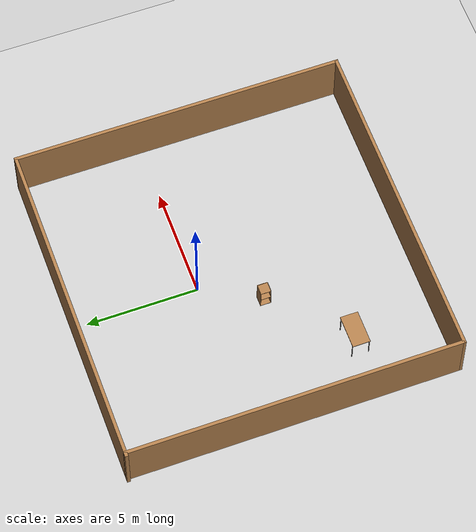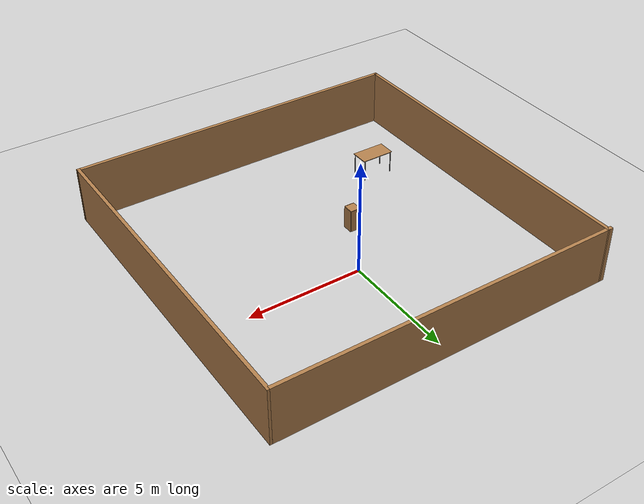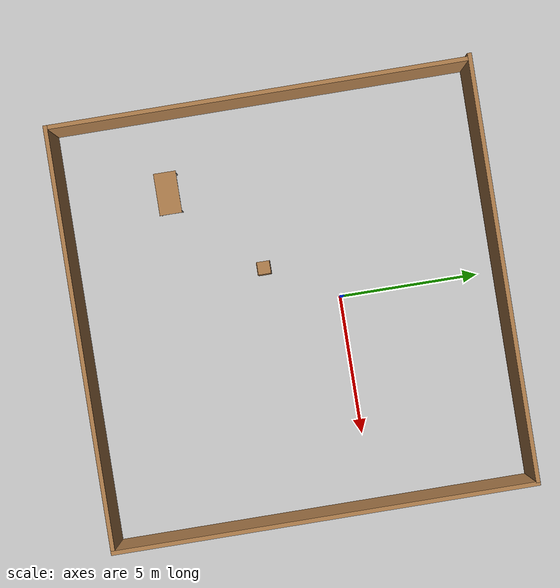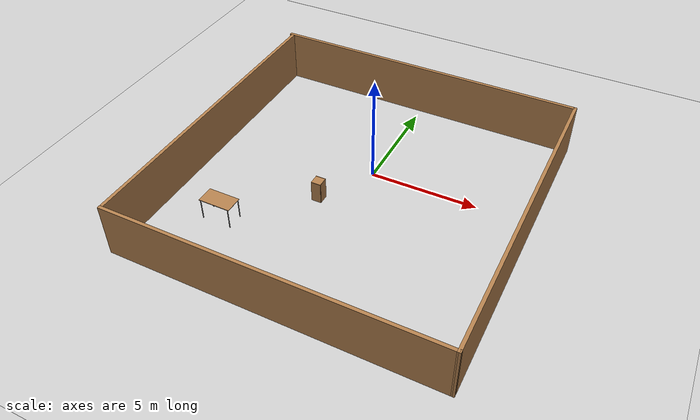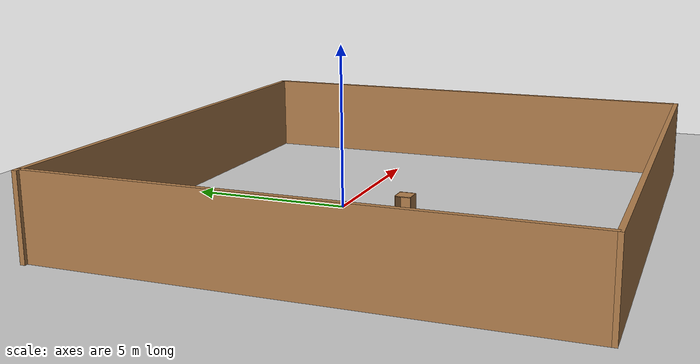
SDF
<sdf version="1.7">
 <world name="my_custom_world">
  <plugin name="gazebo_ros_factory" filename="libgazebo_ros_factory.so"/>
  <plugin name="gazebo_ros_init" filename="libgazebo_ros_init.so"/>
  <model name="ground_plane">
   <static>1</static>
   <link name="link">
    <collision name="collision">
     <geometry><plane><normal>0 0 1</normal><size>100 100</size></plane></geometry>
     <surface><friction><ode><mu>100</mu><mu2>50</mu2></ode></friction></surface>
    </collision>
    <visual name="visual">
     <cast_shadows>0</cast_shadows>
     <geometry><plane><normal>0 0 1</normal><size>100 100</size></plane></geometry>
     <material>
      <script><uri>file://media/materials/scripts/gazebo.material</uri><name>Gazebo/Grey</name></script>
     </material>
    </visual>
   </link>
  </model>
  <light name="sun" type="directional">
   <pose>0 0 10 0 -0 0</pose>
   <diffuse>0.8 0.8 0.8 1</diffuse>
   <specular>0.2 0.2 0.2 1</specular>
   <attenuation>
    <range>1000</range>
    <constant>0.9</constant>
    <linear>0.01</linear>
    <quadratic>0.001</quadratic>
   </attenuation>
   <direction>-0.5 0.1 -0.9</direction>
   <spot><inner_angle>0</inner_angle><outer_angle>0</outer_angle><falloff>0</falloff></spot>
  </light>
  <model name="Room">
   <link name="Wall_2">
    <collision name="Wall_2_Collision">
     <geometry><box><size>14.998 0.15 2.5</size></box></geometry>
     <pose>0 0 1.25 0 -0 0</pose>
    </collision>
    <visual name="Wall_2_Visual">
     <pose>0 0 1.25 0 -0 0</pose>
     <geometry><box><size>14.998 0.15 2.5</size></box></geometry>
     <material>
      <script><uri>file://media/materials/scripts/gazebo.material</uri><name>Gazebo/Wood</name></script>
      <ambient>1 1 1 1</ambient>
     </material>
     <meta><layer>0</layer></meta>
    </visual>
    <pose>-0.075504 5.65293 0 0 -0 -8e-05</pose>
   </link>
   <link name="Wall_3">
    <collision name="Wall_3_Collision">
     <geometry><box><size>15.006 0.15 2.5</size></box></geometry>
     <pose>0 0 1.25 0 -0 0</pose>
    </collision>
    <visual name="Wall_3_Visual">
     <pose>0 0 1.25 0 -0 0</pose>
     <geometry><box><size>15.006 0.15 2.5</size></box></geometry>
     <material>
      <script><uri>file://media/materials/scripts/gazebo.material</uri><name>Gazebo/Wood</name></script>
      <ambient>1 1 1 1</ambient>
     </material>
     <meta><layer>0</layer></meta>
    </visual>
    <pose>7.47634 -1.77565 0 0 -0 -1.56771</pose>
   </link>
   <link name="Wall_4">
    <collision name="Wall_4_Collision">
     <geometry><box><size>14.9978 0.15 2.5</size></box></geometry>
     <pose>0 0 1.25 0 -0 0</pose>
    </collision>
    <visual name="Wall_4_Visual">
     <pose>0 0 1.25 0 -0 0</pose>
     <geometry><box><size>14.9978 0.15 2.5</size></box></geometry>
     <material>
      <script><uri>file://media/materials/scripts/gazebo.material</uri><name>Gazebo/Wood</name></script>
      <ambient>1 1 1 1</ambient>
     </material>
     <meta><layer>0</layer></meta>
    </visual>
    <pose>0.075366 -9.19787 0 0 -0 3.14081</pose>
   </link>
   <link name="Wall_5">
    <collision name="Wall_5_Collision">
     <geometry><box><size>14.9257 0.15 2.5</size></box></geometry>
     <pose>0 0 1.25 0 -0 0</pose>
    </collision>
    <visual name="Wall_5_Visual">
     <pose>0 0 1.25 0 -0 0</pose>
     <geometry><box><size>14.9257 0.15 2.5</size></box></geometry>
     <material>
      <script><uri>file://media/materials/scripts/gazebo.material</uri><name>Gazebo/Wood</name></script>
      <ambient>1 1 1 1</ambient>
     </material>
     <meta><layer>0</layer></meta>
    </visual>
    <pose>-7.37154 -1.73431 0 0 -0 1.57391</pose>
   </link>
   <static>1</static>
  </model>
  <gravity>0 0 -9.8</gravity>
  <magnetic_field>6e-06 2.3e-05 -4.2e-05</magnetic_field>
  <atmosphere type="adiabatic"/>
  <physics type="ode">
   <max_step_size>0.001</max_step_size>
   <real_time_factor>1</real_time_factor>
   <real_time_update_rate>1000</real_time_update_rate>
  </physics>
  <scene><ambient>0.4 0.4 0.4 1</ambient><background>0.7 0.7 0.7 1</background><shadows>1</shadows></scene>
  <audio><device>default</device></audio>
  <spherical_coordinates>
   <surface_model>EARTH_WGS84</surface_model>
   <latitude_deg>0</latitude_deg>
   <longitude_deg>0</longitude_deg>
   <elevation>0</elevation>
   <heading_deg>0</heading_deg>
  </spherical_coordinates>
  <model name="table">
   <static>1</static>
   <link name="link">
    <collision name="surface">
     <pose>0 0 1 0 -0 0</pose>
     <geometry><box><size>1.5 0.8 0.03</size></box></geometry>
     <surface><friction><ode><mu>0.6</mu><mu2>0.6</mu2></ode></friction></surface>
    </collision>
    <visual name="visual1">
     <pose>0 0 1 0 -0 0</pose>
     <geometry><box><size>1.5 0.8 0.03</size></box></geometry>
     <material>
      <script><uri>file://media/materials/scripts/gazebo.material</uri><name>Gazebo/Wood</name></script>
     </material>
    </visual>
    <collision name="front_left_leg">
     <pose>0.68 0.38 0.5 0 -0 0</pose>
     <geometry><cylinder><radius>0.02</radius><length>1</length></cylinder></geometry>
    </collision>
    <visual name="front_left_leg">
     <pose>0.68 0.38 0.5 0 -0 0</pose>
     <geometry><cylinder><radius>0.02</radius><length>1</length></cylinder></geometry>
     <material>
      <script><uri>file://media/materials/scripts/gazebo.material</uri><name>Gazebo/Grey</name></script>
     </material>
    </visual>
    <collision name="front_right_leg">
     <pose>0.68 -0.38 0.5 0 -0 0</pose>
     <geometry><cylinder><radius>0.02</radius><length>1</length></cylinder></geometry>
    </collision>
    <visual name="front_right_leg">
     <pose>0.68 -0.38 0.5 0 -0 0</pose>
     <geometry><cylinder><radius>0.02</radius><length>1</length></cylinder></geometry>
     <material>
      <script><uri>file://media/materials/scripts/gazebo.material</uri><name>Gazebo/Grey</name></script>
     </material>
    </visual>
    <collision name="back_right_leg">
     <pose>-0.68 -0.38 0.5 0 -0 0</pose>
     <geometry><cylinder><radius>0.02</radius><length>1</length></cylinder></geometry>
    </collision>
    <visual name="back_right_leg">
     <pose>-0.68 -0.38 0.5 0 -0 0</pose>
     <geometry><cylinder><radius>0.02</radius><length>1</length></cylinder></geometry>
     <material>
      <script><uri>file://media/materials/scripts/gazebo.material</uri><name>Gazebo/Grey</name></script>
     </material>
    </visual>
    <collision name="back_left_leg">
     <pose>-0.68 0.38 0.5 0 -0 0</pose>
     <geometry><cylinder><radius>0.02</radius><length>1</length></cylinder></geometry>
    </collision>
    <visual name="back_left_leg">
     <pose>-0.68 0.38 0.5 0 -0 0</pose>
     <geometry><cylinder><radius>0.02</radius><length>1</length></cylinder></geometry>
     <material>
      <script><uri>file://media/materials/scripts/gazebo.material</uri><name>Gazebo/Grey</name></script>
     </material>
    </visual>
   </link>
   <pose>-4.57903 -5.48332 0 0 -0 0</pose>
  </model>
  <model name="cabinet">
   <static>1</static>
   <link name="cabinet_bottom_plate">
    <inertial>
     <pose>0 0 -1 0 -0 0</pose>
     <inertia><ixx>2.05</ixx><ixy>0</ixy><ixz>0</ixz><iyy>2.05</iyy><iyz>0</iyz><izz>2.05</izz></inertia>
     <mass>25</mass>
    </inertial>
    <collision name="cabinet_bottom_plate_geom">
     <pose>0 0 0.01 0 -0 0</pose>
     <geometry><box><size>0.45 0.45 0.02</size></box></geometry>
    </collision>
    <visual name="cabinet_bottom_plate_geom_visual">
     <pose>0 0 0.01 0 -0 0</pose>
     <geometry><box><size>0.45 0.45 0.02</size></box></geometry>
     <material>
      <script><uri>file://media/materials/scripts/gazebo.material</uri><name>Gazebo/Wood</name></script>
     </material>
    </visual>
    <collision name="cabinet_bottom_plate_geom_cabinet_back_plate">
     <pose>0.235 0 0.51 0 -0 0</pose>
     <geometry><box><size>0.02 0.45 1.02</size></box></geometry>
    </collision>
    <visual name="cabinet_bottom_plate_geom_cabinet_back_plate_visual">
     <pose>0.235 0 0.51 0 -0 0</pose>
     <geometry><box><size>0.02 0.45 1.02</size></box></geometry>
     <material>
      <script><uri>file://media/materials/scripts/gazebo.material</uri><name>Gazebo/Wood</name></script>
     </material>
    </visual>
    <collision name="cabinet_bottom_plate_geom_cabinet_left_plate">
     <pose>0 0.235 0.51 0 -0 0</pose>
     <geometry><box><size>0.45 0.02 1.02</size></box></geometry>
    </collision>
    <visual name="cabinet_bottom_plate_geom_cabinet_left_plate_visual">
     <pose>0 0.235 0.51 0 -0 0</pose>
     <geometry><box><size>0.45 0.02 1.02</size></box></geometry>
     <material>
      <script><uri>file://media/materials/scripts/gazebo.material</uri><name>Gazebo/Wood</name></script>
     </material>
    </visual>
    <collision name="cabinet_bottom_plate_geom_cabinet_middle_plate">
     <pose>0 0 0.51 0 -0 0</pose>
     <geometry><box><size>0.45 0.45 0.02</size></box></geometry>
    </collision>
    <visual name="cabinet_bottom_plate_geom_cabinet_middle_plate_visual">
     <pose>0 0 0.51 0 -0 0</pose>
     <geometry><box><size>0.45 0.45 0.02</size></box></geometry>
     <material>
      <script><uri>file://media/materials/scripts/gazebo.material</uri><name>Gazebo/Wood</name></script>
     </material>
    </visual>
    <collision name="cabinet_bottom_plate_geom_cabinet_right_plate">
     <pose>0 -0.235 0.51 0 -0 0</pose>
     <geometry><box><size>0.45 0.02 1.02</size></box></geometry>
    </collision>
    <visual name="cabinet_bottom_plate_geom_cabinet_right_plate_visual">
     <pose>0 -0.235 0.51 0 -0 0</pose>
     <geometry><box><size>0.45 0.02 1.02</size></box></geometry>
     <material>
      <script><uri>file://media/materials/scripts/gazebo.material</uri><name>Gazebo/Wood</name></script>
     </material>
    </visual>
    <collision name="cabinet_bottom_plate_geom_cabinet_top_plate">
     <pose>0 0 1.01 0 -0 0</pose>
     <geometry><box><size>0.45 0.45 0.02</size></box></geometry>
    </collision>
    <visual name="cabinet_bottom_plate_geom_cabinet_top_plate_visual">
     <pose>0 0 1.01 0 -0 0</pose>
     <geometry><box><size>0.45 0.45 0.02</size></box></geometry>
     <material>
      <script><uri>file://media/materials/scripts/gazebo.material</uri><name>Gazebo/Wood</name></script>
     </material>
    </visual>
   </link>
   <pose>-1.431 -2.53765 0 0 -0 0</pose>
  </model>
 </world>
</sdf>
